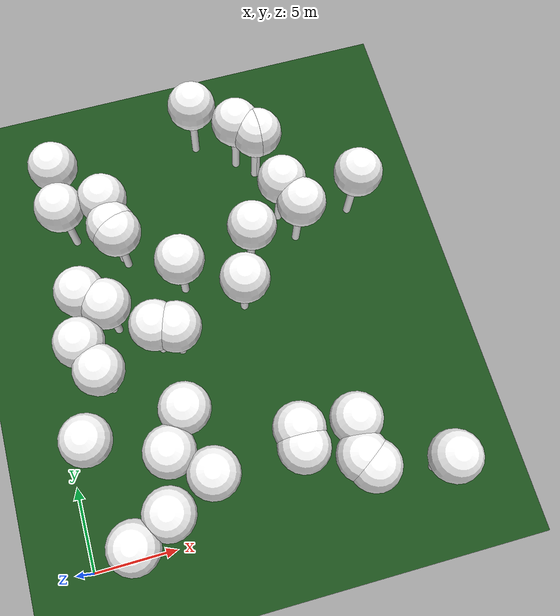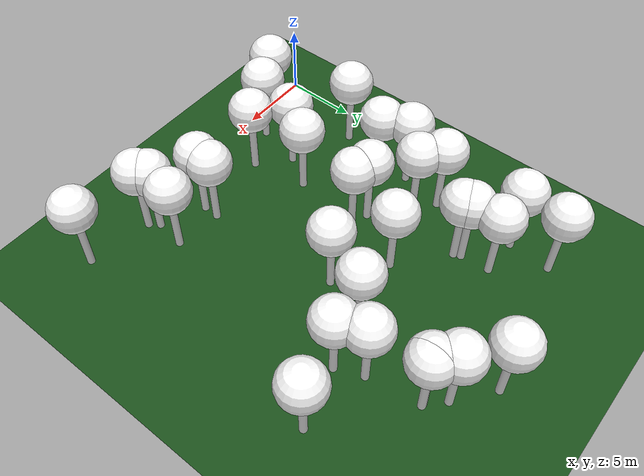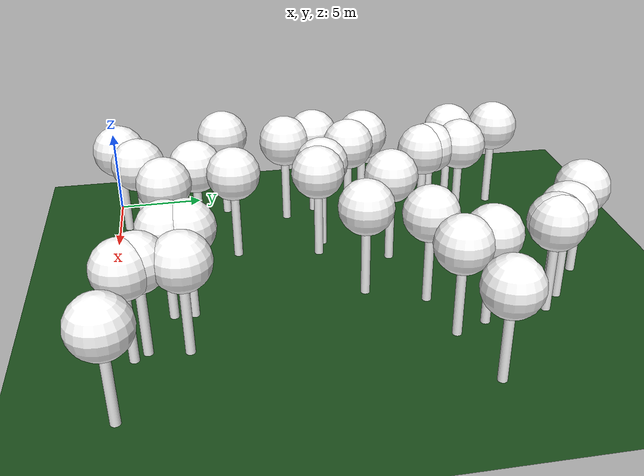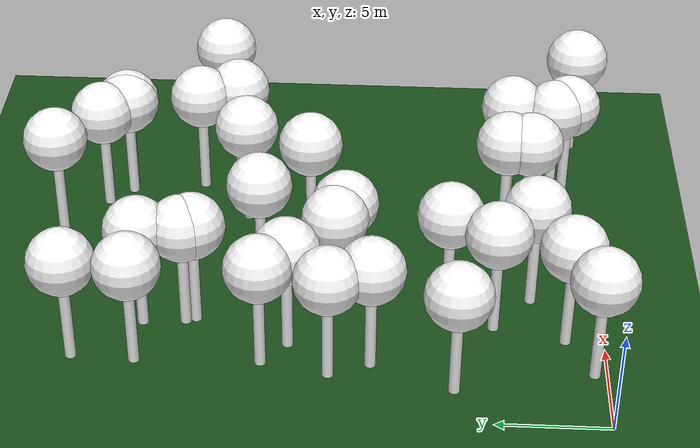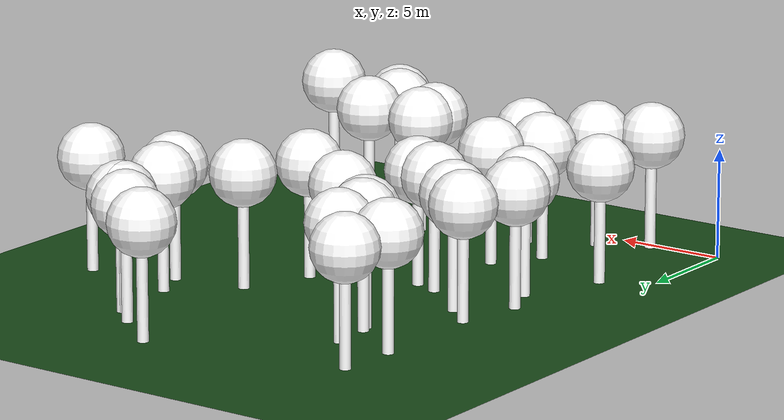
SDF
<sdf version="1.8">
 <world name="forest_world">
  <model name="tree_simple497">
   <static>1</static>
   <link name="link">
    <pose>0 0 0.1 0 -0 0</pose>
    <collision name="collision_trunk">
     <pose>0 0 2 0 -0 0</pose>
     <geometry><cylinder><radius>0.25</radius><length>4</length></cylinder></geometry>
    </collision>
    <collision name="collision_treetop">
     <pose>0 0 5.2 0 -0 0</pose>
     <geometry><sphere><radius>1.5</radius></sphere></geometry>
    </collision>
    <visual name="trunk">
     <pose>0 0 2 0 -0 0</pose>
     <geometry><cylinder><radius>0.25</radius><length>4</length></cylinder></geometry>
     <material>
      <ambient>0.5 0.5 0.5 1</ambient>
      <diffuse>1.0 1.0 1.0 1</diffuse>
      <specular>0.0 0.0 0.0 1</specular>
      <pbr>
       <metal>
        <albedo_map>../worlds/textures/tree_simple_trunk.jpg</albedo_map>
        <metalness>0.0</metalness>
        <roughness>0.8</roughness>
       </metal>
      </pbr>
     </material>
    </visual>
    <visual name="treetop">
     <pose>0 0 5.2 0 -0 0</pose>
     <geometry><sphere><radius>1.5</radius></sphere></geometry>
     <material>
      <ambient>0.5 0.5 0.5 1</ambient>
      <diffuse>1.0 1.0 1.0 1</diffuse>
      <specular>0.0 0.0 0.0 1</specular>
      <pbr>
       <metal>
        <albedo_map>../worlds/textures/tree_simple_treetop.jpg</albedo_map>
        <metalness>0.0</metalness>
        <roughness>0.9</roughness>
       </metal>
      </pbr>
     </material>
    </visual>
   </link>
   <pose>16.5730666381 19.0016793819 0 0 -0 0</pose>
  </model>
  <model name="tree_simple495">
   <static>1</static>
   <link name="link">
    <pose>0 0 0.1 0 -0 0</pose>
    <collision name="collision_trunk">
     <pose>0 0 2 0 -0 0</pose>
     <geometry><cylinder><radius>0.25</radius><length>4</length></cylinder></geometry>
    </collision>
    <collision name="collision_treetop">
     <pose>0 0 5.2 0 -0 0</pose>
     <geometry><sphere><radius>1.5</radius></sphere></geometry>
    </collision>
    <visual name="trunk">
     <pose>0 0 2 0 -0 0</pose>
     <geometry><cylinder><radius>0.25</radius><length>4</length></cylinder></geometry>
     <material>
      <ambient>0.5 0.5 0.5 1</ambient>
      <diffuse>1.0 1.0 1.0 1</diffuse>
      <specular>0.0 0.0 0.0 1</specular>
      <pbr>
       <metal>
        <albedo_map>../worlds/textures/tree_simple_trunk.jpg</albedo_map>
        <metalness>0.0</metalness>
        <roughness>0.8</roughness>
       </metal>
      </pbr>
     </material>
    </visual>
    <visual name="treetop">
     <pose>0 0 5.2 0 -0 0</pose>
     <geometry><sphere><radius>1.5</radius></sphere></geometry>
     <material>
      <ambient>0.5 0.5 0.5 1</ambient>
      <diffuse>1.0 1.0 1.0 1</diffuse>
      <specular>0.0 0.0 0.0 1</specular>
      <pbr>
       <metal>
        <albedo_map>../worlds/textures/tree_simple_treetop.jpg</albedo_map>
        <metalness>0.0</metalness>
        <roughness>0.9</roughness>
       </metal>
      </pbr>
     </material>
    </visual>
   </link>
   <pose>13.2663357304 3.23501246435 0 0 -0 0</pose>
  </model>
  <model name="tree_simple486">
   <static>1</static>
   <link name="link">
    <pose>0 0 0.1 0 -0 0</pose>
    <collision name="collision_trunk">
     <pose>0 0 2 0 -0 0</pose>
     <geometry><cylinder><radius>0.25</radius><length>4</length></cylinder></geometry>
    </collision>
    <collision name="collision_treetop">
     <pose>0 0 5.2 0 -0 0</pose>
     <geometry><sphere><radius>1.5</radius></sphere></geometry>
    </collision>
    <visual name="trunk">
     <pose>0 0 2 0 -0 0</pose>
     <geometry><cylinder><radius>0.25</radius><length>4</length></cylinder></geometry>
     <material>
      <ambient>0.5 0.5 0.5 1</ambient>
      <diffuse>1.0 1.0 1.0 1</diffuse>
      <specular>0.0 0.0 0.0 1</specular>
      <pbr>
       <metal>
        <albedo_map>../worlds/textures/tree_simple_trunk.jpg</albedo_map>
        <metalness>0.0</metalness>
        <roughness>0.8</roughness>
       </metal>
      </pbr>
     </material>
    </visual>
    <visual name="treetop">
     <pose>0 0 5.2 0 -0 0</pose>
     <geometry><sphere><radius>1.5</radius></sphere></geometry>
     <material>
      <ambient>0.5 0.5 0.5 1</ambient>
      <diffuse>1.0 1.0 1.0 1</diffuse>
      <specular>0.0 0.0 0.0 1</specular>
      <pbr>
       <metal>
        <albedo_map>../worlds/textures/tree_simple_treetop.jpg</albedo_map>
        <metalness>0.0</metalness>
        <roughness>0.9</roughness>
       </metal>
      </pbr>
     </material>
    </visual>
   </link>
   <pose>8.18281559396 11.6524151823 0 0 -0 0</pose>
  </model>
  <model name="tree_simple465">
   <static>1</static>
   <link name="link">
    <pose>0 0 0.1 0 -0 0</pose>
    <collision name="collision_trunk">
     <pose>0 0 2 0 -0 0</pose>
     <geometry><cylinder><radius>0.25</radius><length>4</length></cylinder></geometry>
    </collision>
    <collision name="collision_treetop">
     <pose>0 0 5.2 0 -0 0</pose>
     <geometry><sphere><radius>1.5</radius></sphere></geometry>
    </collision>
    <visual name="trunk">
     <pose>0 0 2 0 -0 0</pose>
     <geometry><cylinder><radius>0.25</radius><length>4</length></cylinder></geometry>
     <material>
      <ambient>0.5 0.5 0.5 1</ambient>
      <diffuse>1.0 1.0 1.0 1</diffuse>
      <specular>0.0 0.0 0.0 1</specular>
      <pbr>
       <metal>
        <albedo_map>../worlds/textures/tree_simple_trunk.jpg</albedo_map>
        <metalness>0.0</metalness>
        <roughness>0.8</roughness>
       </metal>
      </pbr>
     </material>
    </visual>
    <visual name="treetop">
     <pose>0 0 5.2 0 -0 0</pose>
     <geometry><sphere><radius>1.5</radius></sphere></geometry>
     <material>
      <ambient>0.5 0.5 0.5 1</ambient>
      <diffuse>1.0 1.0 1.0 1</diffuse>
      <specular>0.0 0.0 0.0 1</specular>
      <pbr>
       <metal>
        <albedo_map>../worlds/textures/tree_simple_treetop.jpg</albedo_map>
        <metalness>0.0</metalness>
        <roughness>0.9</roughness>
       </metal>
      </pbr>
     </material>
    </visual>
   </link>
   <pose>5.78708546562 20.6382949275 0 0 -0 0</pose>
  </model>
  <model name="tree_simple450">
   <static>1</static>
   <link name="link">
    <pose>0 0 0.1 0 -0 0</pose>
    <collision name="collision_trunk">
     <pose>0 0 2 0 -0 0</pose>
     <geometry><cylinder><radius>0.25</radius><length>4</length></cylinder></geometry>
    </collision>
    <collision name="collision_treetop">
     <pose>0 0 5.2 0 -0 0</pose>
     <geometry><sphere><radius>1.5</radius></sphere></geometry>
    </collision>
    <visual name="trunk">
     <pose>0 0 2 0 -0 0</pose>
     <geometry><cylinder><radius>0.25</radius><length>4</length></cylinder></geometry>
     <material>
      <ambient>0.5 0.5 0.5 1</ambient>
      <diffuse>1.0 1.0 1.0 1</diffuse>
      <specular>0.0 0.0 0.0 1</specular>
      <pbr>
       <metal>
        <albedo_map>../worlds/textures/tree_simple_trunk.jpg</albedo_map>
        <metalness>0.0</metalness>
        <roughness>0.8</roughness>
       </metal>
      </pbr>
     </material>
    </visual>
    <visual name="treetop">
     <pose>0 0 5.2 0 -0 0</pose>
     <geometry><sphere><radius>1.5</radius></sphere></geometry>
     <material>
      <ambient>0.5 0.5 0.5 1</ambient>
      <diffuse>1.0 1.0 1.0 1</diffuse>
      <specular>0.0 0.0 0.0 1</specular>
      <pbr>
       <metal>
        <albedo_map>../worlds/textures/tree_simple_treetop.jpg</albedo_map>
        <metalness>0.0</metalness>
        <roughness>0.9</roughness>
       </metal>
      </pbr>
     </material>
    </visual>
   </link>
   <pose>16.0273432372 22.5148519884 0 0 -0 0</pose>
  </model>
  <model name="tree_simple421">
   <static>1</static>
   <link name="link">
    <pose>0 0 0.1 0 -0 0</pose>
    <collision name="collision_trunk">
     <pose>0 0 2 0 -0 0</pose>
     <geometry><cylinder><radius>0.25</radius><length>4</length></cylinder></geometry>
    </collision>
    <collision name="collision_treetop">
     <pose>0 0 5.2 0 -0 0</pose>
     <geometry><sphere><radius>1.5</radius></sphere></geometry>
    </collision>
    <visual name="trunk">
     <pose>0 0 2 0 -0 0</pose>
     <geometry><cylinder><radius>0.25</radius><length>4</length></cylinder></geometry>
     <material>
      <ambient>0.5 0.5 0.5 1</ambient>
      <diffuse>1.0 1.0 1.0 1</diffuse>
      <specular>0.0 0.0 0.0 1</specular>
      <pbr>
       <metal>
        <albedo_map>../worlds/textures/tree_simple_trunk.jpg</albedo_map>
        <metalness>0.0</metalness>
        <roughness>0.8</roughness>
       </metal>
      </pbr>
     </material>
    </visual>
    <visual name="treetop">
     <pose>0 0 5.2 0 -0 0</pose>
     <geometry><sphere><radius>1.5</radius></sphere></geometry>
     <material>
      <ambient>0.5 0.5 0.5 1</ambient>
      <diffuse>1.0 1.0 1.0 1</diffuse>
      <specular>0.0 0.0 0.0 1</specular>
      <pbr>
       <metal>
        <albedo_map>../worlds/textures/tree_simple_treetop.jpg</albedo_map>
        <metalness>0.0</metalness>
        <roughness>0.9</roughness>
       </metal>
      </pbr>
     </material>
    </visual>
   </link>
   <pose>7.02492588621 12.0559728025 0 0 -0 0</pose>
  </model>
  <model name="tree_simple412">
   <static>1</static>
   <link name="link">
    <pose>0 0 0.1 0 -0 0</pose>
    <collision name="collision_trunk">
     <pose>0 0 2 0 -0 0</pose>
     <geometry><cylinder><radius>0.25</radius><length>4</length></cylinder></geometry>
    </collision>
    <collision name="collision_treetop">
     <pose>0 0 5.2 0 -0 0</pose>
     <geometry><sphere><radius>1.5</radius></sphere></geometry>
    </collision>
    <visual name="trunk">
     <pose>0 0 2 0 -0 0</pose>
     <geometry><cylinder><radius>0.25</radius><length>4</length></cylinder></geometry>
     <material>
      <ambient>0.5 0.5 0.5 1</ambient>
      <diffuse>1.0 1.0 1.0 1</diffuse>
      <specular>0.0 0.0 0.0 1</specular>
      <pbr>
       <metal>
        <albedo_map>../worlds/textures/tree_simple_trunk.jpg</albedo_map>
        <metalness>0.0</metalness>
        <roughness>0.8</roughness>
       </metal>
      </pbr>
     </material>
    </visual>
    <visual name="treetop">
     <pose>0 0 5.2 0 -0 0</pose>
     <geometry><sphere><radius>1.5</radius></sphere></geometry>
     <material>
      <ambient>0.5 0.5 0.5 1</ambient>
      <diffuse>1.0 1.0 1.0 1</diffuse>
      <specular>0.0 0.0 0.0 1</specular>
      <pbr>
       <metal>
        <albedo_map>../worlds/textures/tree_simple_treetop.jpg</albedo_map>
        <metalness>0.0</metalness>
        <roughness>0.9</roughness>
       </metal>
      </pbr>
     </material>
    </visual>
   </link>
   <pose>1.94235434688 6.68973059551 0 0 -0 0</pose>
  </model>
  <model name="tree_simple350">
   <static>1</static>
   <link name="link">
    <pose>0 0 0.1 0 -0 0</pose>
    <collision name="collision_trunk">
     <pose>0 0 2 0 -0 0</pose>
     <geometry><cylinder><radius>0.25</radius><length>4</length></cylinder></geometry>
    </collision>
    <collision name="collision_treetop">
     <pose>0 0 5.2 0 -0 0</pose>
     <geometry><sphere><radius>1.5</radius></sphere></geometry>
    </collision>
    <visual name="trunk">
     <pose>0 0 2 0 -0 0</pose>
     <geometry><cylinder><radius>0.25</radius><length>4</length></cylinder></geometry>
     <material>
      <ambient>0.5 0.5 0.5 1</ambient>
      <diffuse>1.0 1.0 1.0 1</diffuse>
      <specular>0.0 0.0 0.0 1</specular>
      <pbr>
       <metal>
        <albedo_map>../worlds/textures/tree_simple_trunk.jpg</albedo_map>
        <metalness>0.0</metalness>
        <roughness>0.8</roughness>
       </metal>
      </pbr>
     </material>
    </visual>
    <visual name="treetop">
     <pose>0 0 5.2 0 -0 0</pose>
     <geometry><sphere><radius>1.5</radius></sphere></geometry>
     <material>
      <ambient>0.5 0.5 0.5 1</ambient>
      <diffuse>1.0 1.0 1.0 1</diffuse>
      <specular>0.0 0.0 0.0 1</specular>
      <pbr>
       <metal>
        <albedo_map>../worlds/textures/tree_simple_treetop.jpg</albedo_map>
        <metalness>0.0</metalness>
        <roughness>0.9</roughness>
       </metal>
      </pbr>
     </material>
    </visual>
   </link>
   <pose>5.40258361507 1.7380066323 0 0 -0 0</pose>
  </model>
  <model name="tree_simple346">
   <static>1</static>
   <link name="link">
    <pose>0 0 0.1 0 -0 0</pose>
    <collision name="collision_trunk">
     <pose>0 0 2 0 -0 0</pose>
     <geometry><cylinder><radius>0.25</radius><length>4</length></cylinder></geometry>
    </collision>
    <collision name="collision_treetop">
     <pose>0 0 5.2 0 -0 0</pose>
     <geometry><sphere><radius>1.5</radius></sphere></geometry>
    </collision>
    <visual name="trunk">
     <pose>0 0 2 0 -0 0</pose>
     <geometry><cylinder><radius>0.25</radius><length>4</length></cylinder></geometry>
     <material>
      <ambient>0.5 0.5 0.5 1</ambient>
      <diffuse>1.0 1.0 1.0 1</diffuse>
      <specular>0.0 0.0 0.0 1</specular>
      <pbr>
       <metal>
        <albedo_map>../worlds/textures/tree_simple_trunk.jpg</albedo_map>
        <metalness>0.0</metalness>
        <roughness>0.8</roughness>
       </metal>
      </pbr>
     </material>
    </visual>
    <visual name="treetop">
     <pose>0 0 5.2 0 -0 0</pose>
     <geometry><sphere><radius>1.5</radius></sphere></geometry>
     <material>
      <ambient>0.5 0.5 0.5 1</ambient>
      <diffuse>1.0 1.0 1.0 1</diffuse>
      <specular>0.0 0.0 0.0 1</specular>
      <pbr>
       <metal>
        <albedo_map>../worlds/textures/tree_simple_treetop.jpg</albedo_map>
        <metalness>0.0</metalness>
        <roughness>0.9</roughness>
       </metal>
      </pbr>
     </material>
    </visual>
   </link>
   <pose>6.18558583868 4.91340003373 0 0 -0 0</pose>
  </model>
  <model name="tree_simple328">
   <static>1</static>
   <link name="link">
    <pose>0 0 0.1 0 -0 0</pose>
    <collision name="collision_trunk">
     <pose>0 0 2 0 -0 0</pose>
     <geometry><cylinder><radius>0.25</radius><length>4</length></cylinder></geometry>
    </collision>
    <collision name="collision_treetop">
     <pose>0 0 5.2 0 -0 0</pose>
     <geometry><sphere><radius>1.5</radius></sphere></geometry>
    </collision>
    <visual name="trunk">
     <pose>0 0 2 0 -0 0</pose>
     <geometry><cylinder><radius>0.25</radius><length>4</length></cylinder></geometry>
     <material>
      <ambient>0.5 0.5 0.5 1</ambient>
      <diffuse>1.0 1.0 1.0 1</diffuse>
      <specular>0.0 0.0 0.0 1</specular>
      <pbr>
       <metal>
        <albedo_map>../worlds/textures/tree_simple_trunk.jpg</albedo_map>
        <metalness>0.0</metalness>
        <roughness>0.8</roughness>
       </metal>
      </pbr>
     </material>
    </visual>
    <visual name="treetop">
     <pose>0 0 5.2 0 -0 0</pose>
     <geometry><sphere><radius>1.5</radius></sphere></geometry>
     <material>
      <ambient>0.5 0.5 0.5 1</ambient>
      <diffuse>1.0 1.0 1.0 1</diffuse>
      <specular>0.0 0.0 0.0 1</specular>
      <pbr>
       <metal>
        <albedo_map>../worlds/textures/tree_simple_treetop.jpg</albedo_map>
        <metalness>0.0</metalness>
        <roughness>0.9</roughness>
       </metal>
      </pbr>
     </material>
    </visual>
   </link>
   <pose>3.34573808519 23.5188113382 0 0 -0 0</pose>
  </model>
  <model name="tree_simple324">
   <static>1</static>
   <link name="link">
    <pose>0 0 0.1 0 -0 0</pose>
    <collision name="collision_trunk">
     <pose>0 0 2 0 -0 0</pose>
     <geometry><cylinder><radius>0.25</radius><length>4</length></cylinder></geometry>
    </collision>
    <collision name="collision_treetop">
     <pose>0 0 5.2 0 -0 0</pose>
     <geometry><sphere><radius>1.5</radius></sphere></geometry>
    </collision>
    <visual name="trunk">
     <pose>0 0 2 0 -0 0</pose>
     <geometry><cylinder><radius>0.25</radius><length>4</length></cylinder></geometry>
     <material>
      <ambient>0.5 0.5 0.5 1</ambient>
      <diffuse>1.0 1.0 1.0 1</diffuse>
      <specular>0.0 0.0 0.0 1</specular>
      <pbr>
       <metal>
        <albedo_map>../worlds/textures/tree_simple_trunk.jpg</albedo_map>
        <metalness>0.0</metalness>
        <roughness>0.8</roughness>
       </metal>
      </pbr>
     </material>
    </visual>
    <visual name="treetop">
     <pose>0 0 5.2 0 -0 0</pose>
     <geometry><sphere><radius>1.5</radius></sphere></geometry>
     <material>
      <ambient>0.5 0.5 0.5 1</ambient>
      <diffuse>1.0 1.0 1.0 1</diffuse>
      <specular>0.0 0.0 0.0 1</specular>
      <pbr>
       <metal>
        <albedo_map>../worlds/textures/tree_simple_treetop.jpg</albedo_map>
        <metalness>0.0</metalness>
        <roughness>0.9</roughness>
       </metal>
      </pbr>
     </material>
    </visual>
   </link>
   <pose>2.67974288493 12.1656578915 0 0 -0 0</pose>
  </model>
  <model name="tree_simple315">
   <static>1</static>
   <link name="link">
    <pose>0 0 0.1 0 -0 0</pose>
    <collision name="collision_trunk">
     <pose>0 0 2 0 -0 0</pose>
     <geometry><cylinder><radius>0.25</radius><length>4</length></cylinder></geometry>
    </collision>
    <collision name="collision_treetop">
     <pose>0 0 5.2 0 -0 0</pose>
     <geometry><sphere><radius>1.5</radius></sphere></geometry>
    </collision>
    <visual name="trunk">
     <pose>0 0 2 0 -0 0</pose>
     <geometry><cylinder><radius>0.25</radius><length>4</length></cylinder></geometry>
     <material>
      <ambient>0.5 0.5 0.5 1</ambient>
      <diffuse>1.0 1.0 1.0 1</diffuse>
      <specular>0.0 0.0 0.0 1</specular>
      <pbr>
       <metal>
        <albedo_map>../worlds/textures/tree_simple_trunk.jpg</albedo_map>
        <metalness>0.0</metalness>
        <roughness>0.8</roughness>
       </metal>
      </pbr>
     </material>
    </visual>
    <visual name="treetop">
     <pose>0 0 5.2 0 -0 0</pose>
     <geometry><sphere><radius>1.5</radius></sphere></geometry>
     <material>
      <ambient>0.5 0.5 0.5 1</ambient>
      <diffuse>1.0 1.0 1.0 1</diffuse>
      <specular>0.0 0.0 0.0 1</specular>
      <pbr>
       <metal>
        <albedo_map>../worlds/textures/tree_simple_treetop.jpg</albedo_map>
        <metalness>0.0</metalness>
        <roughness>0.9</roughness>
       </metal>
      </pbr>
     </material>
    </visual>
   </link>
   <pose>20.9855205965 0.626463942169 0 0 -0 0</pose>
  </model>
  <model name="tree_simple308">
   <static>1</static>
   <link name="link">
    <pose>0 0 0.1 0 -0 0</pose>
    <collision name="collision_trunk">
     <pose>0 0 2 0 -0 0</pose>
     <geometry><cylinder><radius>0.25</radius><length>4</length></cylinder></geometry>
    </collision>
    <collision name="collision_treetop">
     <pose>0 0 5.2 0 -0 0</pose>
     <geometry><sphere><radius>1.5</radius></sphere></geometry>
    </collision>
    <visual name="trunk">
     <pose>0 0 2 0 -0 0</pose>
     <geometry><cylinder><radius>0.25</radius><length>4</length></cylinder></geometry>
     <material>
      <ambient>0.5 0.5 0.5 1</ambient>
      <diffuse>1.0 1.0 1.0 1</diffuse>
      <specular>0.0 0.0 0.0 1</specular>
      <pbr>
       <metal>
        <albedo_map>../worlds/textures/tree_simple_trunk.jpg</albedo_map>
        <metalness>0.0</metalness>
        <roughness>0.8</roughness>
       </metal>
      </pbr>
     </material>
    </visual>
    <visual name="treetop">
     <pose>0 0 5.2 0 -0 0</pose>
     <geometry><sphere><radius>1.5</radius></sphere></geometry>
     <material>
      <ambient>0.5 0.5 0.5 1</ambient>
      <diffuse>1.0 1.0 1.0 1</diffuse>
      <specular>0.0 0.0 0.0 1</specular>
      <pbr>
       <metal>
        <albedo_map>../worlds/textures/tree_simple_treetop.jpg</albedo_map>
        <metalness>0.0</metalness>
        <roughness>0.9</roughness>
       </metal>
      </pbr>
     </material>
    </visual>
   </link>
   <pose>3.23733276298 0.582978933188 0 0 -0 0</pose>
  </model>
  <model name="tree_simple304">
   <static>1</static>
   <link name="link">
    <pose>0 0 0.1 0 -0 0</pose>
    <collision name="collision_trunk">
     <pose>0 0 2 0 -0 0</pose>
     <geometry><cylinder><radius>0.25</radius><length>4</length></cylinder></geometry>
    </collision>
    <collision name="collision_treetop">
     <pose>0 0 5.2 0 -0 0</pose>
     <geometry><sphere><radius>1.5</radius></sphere></geometry>
    </collision>
    <visual name="trunk">
     <pose>0 0 2 0 -0 0</pose>
     <geometry><cylinder><radius>0.25</radius><length>4</length></cylinder></geometry>
     <material>
      <ambient>0.5 0.5 0.5 1</ambient>
      <diffuse>1.0 1.0 1.0 1</diffuse>
      <specular>0.0 0.0 0.0 1</specular>
      <pbr>
       <metal>
        <albedo_map>../worlds/textures/tree_simple_trunk.jpg</albedo_map>
        <metalness>0.0</metalness>
        <roughness>0.8</roughness>
       </metal>
      </pbr>
     </material>
    </visual>
    <visual name="treetop">
     <pose>0 0 5.2 0 -0 0</pose>
     <geometry><sphere><radius>1.5</radius></sphere></geometry>
     <material>
      <ambient>0.5 0.5 0.5 1</ambient>
      <diffuse>1.0 1.0 1.0 1</diffuse>
      <specular>0.0 0.0 0.0 1</specular>
      <pbr>
       <metal>
        <albedo_map>../worlds/textures/tree_simple_treetop.jpg</albedo_map>
        <metalness>0.0</metalness>
        <roughness>0.9</roughness>
       </metal>
      </pbr>
     </material>
    </visual>
   </link>
   <pose>12.7492321523 13.4736505169 0 0 -0 0</pose>
  </model>
  <model name="tree_simple269">
   <static>1</static>
   <link name="link">
    <pose>0 0 0.1 0 -0 0</pose>
    <collision name="collision_trunk">
     <pose>0 0 2 0 -0 0</pose>
     <geometry><cylinder><radius>0.25</radius><length>4</length></cylinder></geometry>
    </collision>
    <collision name="collision_treetop">
     <pose>0 0 5.2 0 -0 0</pose>
     <geometry><sphere><radius>1.5</radius></sphere></geometry>
    </collision>
    <visual name="trunk">
     <pose>0 0 2 0 -0 0</pose>
     <geometry><cylinder><radius>0.25</radius><length>4</length></cylinder></geometry>
     <material>
      <ambient>0.5 0.5 0.5 1</ambient>
      <diffuse>1.0 1.0 1.0 1</diffuse>
      <specular>0.0 0.0 0.0 1</specular>
      <pbr>
       <metal>
        <albedo_map>../worlds/textures/tree_simple_trunk.jpg</albedo_map>
        <metalness>0.0</metalness>
        <roughness>0.8</roughness>
       </metal>
      </pbr>
     </material>
    </visual>
    <visual name="treetop">
     <pose>0 0 5.2 0 -0 0</pose>
     <geometry><sphere><radius>1.5</radius></sphere></geometry>
     <material>
      <ambient>0.5 0.5 0.5 1</ambient>
      <diffuse>1.0 1.0 1.0 1</diffuse>
      <specular>0.0 0.0 0.0 1</specular>
      <pbr>
       <metal>
        <albedo_map>../worlds/textures/tree_simple_treetop.jpg</albedo_map>
        <metalness>0.0</metalness>
        <roughness>0.9</roughness>
       </metal>
      </pbr>
     </material>
    </visual>
   </link>
   <pose>3.4316618278 10.3418603378 0 0 -0 0</pose>
  </model>
  <model name="tree_simple246">
   <static>1</static>
   <link name="link">
    <pose>0 0 0.1 0 -0 0</pose>
    <collision name="collision_trunk">
     <pose>0 0 2 0 -0 0</pose>
     <geometry><cylinder><radius>0.25</radius><length>4</length></cylinder></geometry>
    </collision>
    <collision name="collision_treetop">
     <pose>0 0 5.2 0 -0 0</pose>
     <geometry><sphere><radius>1.5</radius></sphere></geometry>
    </collision>
    <visual name="trunk">
     <pose>0 0 2 0 -0 0</pose>
     <geometry><cylinder><radius>0.25</radius><length>4</length></cylinder></geometry>
     <material>
      <ambient>0.5 0.5 0.5 1</ambient>
      <diffuse>1.0 1.0 1.0 1</diffuse>
      <specular>0.0 0.0 0.0 1</specular>
      <pbr>
       <metal>
        <albedo_map>../worlds/textures/tree_simple_trunk.jpg</albedo_map>
        <metalness>0.0</metalness>
        <roughness>0.8</roughness>
       </metal>
      </pbr>
     </material>
    </visual>
    <visual name="treetop">
     <pose>0 0 5.2 0 -0 0</pose>
     <geometry><sphere><radius>1.5</radius></sphere></geometry>
     <material>
      <ambient>0.5 0.5 0.5 1</ambient>
      <diffuse>1.0 1.0 1.0 1</diffuse>
      <specular>0.0 0.0 0.0 1</specular>
      <pbr>
       <metal>
        <albedo_map>../worlds/textures/tree_simple_treetop.jpg</albedo_map>
        <metalness>0.0</metalness>
        <roughness>0.9</roughness>
       </metal>
      </pbr>
     </material>
    </visual>
   </link>
   <pose>4.59531277399 14.0377896265 0 0 -0 0</pose>
  </model>
  <model name="tree_simple214">
   <static>1</static>
   <link name="link">
    <pose>0 0 0.1 0 -0 0</pose>
    <collision name="collision_trunk">
     <pose>0 0 2 0 -0 0</pose>
     <geometry><cylinder><radius>0.25</radius><length>4</length></cylinder></geometry>
    </collision>
    <collision name="collision_treetop">
     <pose>0 0 5.2 0 -0 0</pose>
     <geometry><sphere><radius>1.5</radius></sphere></geometry>
    </collision>
    <visual name="trunk">
     <pose>0 0 2 0 -0 0</pose>
     <geometry><cylinder><radius>0.25</radius><length>4</length></cylinder></geometry>
     <material>
      <ambient>0.5 0.5 0.5 1</ambient>
      <diffuse>1.0 1.0 1.0 1</diffuse>
      <specular>0.0 0.0 0.0 1</specular>
      <pbr>
       <metal>
        <albedo_map>../worlds/textures/tree_simple_trunk.jpg</albedo_map>
        <metalness>0.0</metalness>
        <roughness>0.8</roughness>
       </metal>
      </pbr>
     </material>
    </visual>
    <visual name="treetop">
     <pose>0 0 5.2 0 -0 0</pose>
     <geometry><sphere><radius>1.5</radius></sphere></geometry>
     <material>
      <ambient>0.5 0.5 0.5 1</ambient>
      <diffuse>1.0 1.0 1.0 1</diffuse>
      <specular>0.0 0.0 0.0 1</specular>
      <pbr>
       <metal>
        <albedo_map>../worlds/textures/tree_simple_treetop.jpg</albedo_map>
        <metalness>0.0</metalness>
        <roughness>0.9</roughness>
       </metal>
      </pbr>
     </material>
    </visual>
   </link>
   <pose>16.4618787814 3.98227082292 0 0 -0 0</pose>
  </model>
  <model name="tree_simple181">
   <static>1</static>
   <link name="link">
    <pose>0 0 0.1 0 -0 0</pose>
    <collision name="collision_trunk">
     <pose>0 0 2 0 -0 0</pose>
     <geometry><cylinder><radius>0.25</radius><length>4</length></cylinder></geometry>
    </collision>
    <collision name="collision_treetop">
     <pose>0 0 5.2 0 -0 0</pose>
     <geometry><sphere><radius>1.5</radius></sphere></geometry>
    </collision>
    <visual name="trunk">
     <pose>0 0 2 0 -0 0</pose>
     <geometry><cylinder><radius>0.25</radius><length>4</length></cylinder></geometry>
     <material>
      <ambient>0.5 0.5 0.5 1</ambient>
      <diffuse>1.0 1.0 1.0 1</diffuse>
      <specular>0.0 0.0 0.0 1</specular>
      <pbr>
       <metal>
        <albedo_map>../worlds/textures/tree_simple_trunk.jpg</albedo_map>
        <metalness>0.0</metalness>
        <roughness>0.8</roughness>
       </metal>
      </pbr>
     </material>
    </visual>
    <visual name="treetop">
     <pose>0 0 5.2 0 -0 0</pose>
     <geometry><sphere><radius>1.5</radius></sphere></geometry>
     <material>
      <ambient>0.5 0.5 0.5 1</ambient>
      <diffuse>1.0 1.0 1.0 1</diffuse>
      <specular>0.0 0.0 0.0 1</specular>
      <pbr>
       <metal>
        <albedo_map>../worlds/textures/tree_simple_treetop.jpg</albedo_map>
        <metalness>0.0</metalness>
        <roughness>0.9</roughness>
       </metal>
      </pbr>
     </material>
    </visual>
   </link>
   <pose>14.8848643659 23.5674852772 0 0 -0 0</pose>
  </model>
  <model name="tree_simple177">
   <static>1</static>
   <link name="link">
    <pose>0 0 0.1 0 -0 0</pose>
    <collision name="collision_trunk">
     <pose>0 0 2 0 -0 0</pose>
     <geometry><cylinder><radius>0.25</radius><length>4</length></cylinder></geometry>
    </collision>
    <collision name="collision_treetop">
     <pose>0 0 5.2 0 -0 0</pose>
     <geometry><sphere><radius>1.5</radius></sphere></geometry>
    </collision>
    <visual name="trunk">
     <pose>0 0 2 0 -0 0</pose>
     <geometry><cylinder><radius>0.25</radius><length>4</length></cylinder></geometry>
     <material>
      <ambient>0.5 0.5 0.5 1</ambient>
      <diffuse>1.0 1.0 1.0 1</diffuse>
      <specular>0.0 0.0 0.0 1</specular>
      <pbr>
       <metal>
        <albedo_map>../worlds/textures/tree_simple_trunk.jpg</albedo_map>
        <metalness>0.0</metalness>
        <roughness>0.8</roughness>
       </metal>
      </pbr>
     </material>
    </visual>
    <visual name="treetop">
     <pose>0 0 5.2 0 -0 0</pose>
     <geometry><sphere><radius>1.5</radius></sphere></geometry>
     <material>
      <ambient>0.5 0.5 0.5 1</ambient>
      <diffuse>1.0 1.0 1.0 1</diffuse>
      <specular>0.0 0.0 0.0 1</specular>
      <pbr>
       <metal>
        <albedo_map>../worlds/textures/tree_simple_treetop.jpg</albedo_map>
        <metalness>0.0</metalness>
        <roughness>0.9</roughness>
       </metal>
      </pbr>
     </material>
    </visual>
   </link>
   <pose>5.95472873547 18.7195439191 0 0 -0 0</pose>
  </model>
  <model name="tree_simple160">
   <static>1</static>
   <link name="link">
    <pose>0 0 0.1 0 -0 0</pose>
    <collision name="collision_trunk">
     <pose>0 0 2 0 -0 0</pose>
     <geometry><cylinder><radius>0.25</radius><length>4</length></cylinder></geometry>
    </collision>
    <collision name="collision_treetop">
     <pose>0 0 5.2 0 -0 0</pose>
     <geometry><sphere><radius>1.5</radius></sphere></geometry>
    </collision>
    <visual name="trunk">
     <pose>0 0 2 0 -0 0</pose>
     <geometry><cylinder><radius>0.25</radius><length>4</length></cylinder></geometry>
     <material>
      <ambient>0.5 0.5 0.5 1</ambient>
      <diffuse>1.0 1.0 1.0 1</diffuse>
      <specular>0.0 0.0 0.0 1</specular>
      <pbr>
       <metal>
        <albedo_map>../worlds/textures/tree_simple_trunk.jpg</albedo_map>
        <metalness>0.0</metalness>
        <roughness>0.8</roughness>
       </metal>
      </pbr>
     </material>
    </visual>
    <visual name="treetop">
     <pose>0 0 5.2 0 -0 0</pose>
     <geometry><sphere><radius>1.5</radius></sphere></geometry>
     <material>
      <ambient>0.5 0.5 0.5 1</ambient>
      <diffuse>1.0 1.0 1.0 1</diffuse>
      <specular>0.0 0.0 0.0 1</specular>
      <pbr>
       <metal>
        <albedo_map>../worlds/textures/tree_simple_treetop.jpg</albedo_map>
        <metalness>0.0</metalness>
        <roughness>0.9</roughness>
       </metal>
      </pbr>
     </material>
    </visual>
   </link>
   <pose>3.31258380175 15.1525774981 0 0 -0 0</pose>
  </model>
  <model name="tree_simple145">
   <static>1</static>
   <link name="link">
    <pose>0 0 0.1 0 -0 0</pose>
    <collision name="collision_trunk">
     <pose>0 0 2 0 -0 0</pose>
     <geometry><cylinder><radius>0.25</radius><length>4</length></cylinder></geometry>
    </collision>
    <collision name="collision_treetop">
     <pose>0 0 5.2 0 -0 0</pose>
     <geometry><sphere><radius>1.5</radius></sphere></geometry>
    </collision>
    <visual name="trunk">
     <pose>0 0 2 0 -0 0</pose>
     <geometry><cylinder><radius>0.25</radius><length>4</length></cylinder></geometry>
     <material>
      <ambient>0.5 0.5 0.5 1</ambient>
      <diffuse>1.0 1.0 1.0 1</diffuse>
      <specular>0.0 0.0 0.0 1</specular>
      <pbr>
       <metal>
        <albedo_map>../worlds/textures/tree_simple_trunk.jpg</albedo_map>
        <metalness>0.0</metalness>
        <roughness>0.8</roughness>
       </metal>
      </pbr>
     </material>
    </visual>
    <visual name="treetop">
     <pose>0 0 5.2 0 -0 0</pose>
     <geometry><sphere><radius>1.5</radius></sphere></geometry>
     <material>
      <ambient>0.5 0.5 0.5 1</ambient>
      <diffuse>1.0 1.0 1.0 1</diffuse>
      <specular>0.0 0.0 0.0 1</specular>
      <pbr>
       <metal>
        <albedo_map>../worlds/textures/tree_simple_treetop.jpg</albedo_map>
        <metalness>0.0</metalness>
        <roughness>0.9</roughness>
       </metal>
      </pbr>
     </material>
    </visual>
   </link>
   <pose>7.53257093085 6.9864658102 0 0 -0 0</pose>
  </model>
  <model name="tree_simple98">
   <static>1</static>
   <link name="link">
    <pose>0 0 0.1 0 -0 0</pose>
    <collision name="collision_trunk">
     <pose>0 0 2 0 -0 0</pose>
     <geometry><cylinder><radius>0.25</radius><length>4</length></cylinder></geometry>
    </collision>
    <collision name="collision_treetop">
     <pose>0 0 5.2 0 -0 0</pose>
     <geometry><sphere><radius>1.5</radius></sphere></geometry>
    </collision>
    <visual name="trunk">
     <pose>0 0 2 0 -0 0</pose>
     <geometry><cylinder><radius>0.25</radius><length>4</length></cylinder></geometry>
     <material>
      <ambient>0.5 0.5 0.5 1</ambient>
      <diffuse>1.0 1.0 1.0 1</diffuse>
      <specular>0.0 0.0 0.0 1</specular>
      <pbr>
       <metal>
        <albedo_map>../worlds/textures/tree_simple_trunk.jpg</albedo_map>
        <metalness>0.0</metalness>
        <roughness>0.8</roughness>
       </metal>
      </pbr>
     </material>
    </visual>
    <visual name="treetop">
     <pose>0 0 5.2 0 -0 0</pose>
     <geometry><sphere><radius>1.5</radius></sphere></geometry>
     <material>
      <ambient>0.5 0.5 0.5 1</ambient>
      <diffuse>1.0 1.0 1.0 1</diffuse>
      <specular>0.0 0.0 0.0 1</specular>
      <pbr>
       <metal>
        <albedo_map>../worlds/textures/tree_simple_treetop.jpg</albedo_map>
        <metalness>0.0</metalness>
        <roughness>0.9</roughness>
       </metal>
      </pbr>
     </material>
    </visual>
   </link>
   <pose>14.024693035 16.5700471203 0 0 -0 0</pose>
  </model>
  <model name="tree_simple95">
   <static>1</static>
   <link name="link">
    <pose>0 0 0.1 0 -0 0</pose>
    <collision name="collision_trunk">
     <pose>0 0 2 0 -0 0</pose>
     <geometry><cylinder><radius>0.25</radius><length>4</length></cylinder></geometry>
    </collision>
    <collision name="collision_treetop">
     <pose>0 0 5.2 0 -0 0</pose>
     <geometry><sphere><radius>1.5</radius></sphere></geometry>
    </collision>
    <visual name="trunk">
     <pose>0 0 2 0 -0 0</pose>
     <geometry><cylinder><radius>0.25</radius><length>4</length></cylinder></geometry>
     <material>
      <ambient>0.5 0.5 0.5 1</ambient>
      <diffuse>1.0 1.0 1.0 1</diffuse>
      <specular>0.0 0.0 0.0 1</specular>
      <pbr>
       <metal>
        <albedo_map>../worlds/textures/tree_simple_trunk.jpg</albedo_map>
        <metalness>0.0</metalness>
        <roughness>0.8</roughness>
       </metal>
      </pbr>
     </material>
    </visual>
    <visual name="treetop">
     <pose>0 0 5.2 0 -0 0</pose>
     <geometry><sphere><radius>1.5</radius></sphere></geometry>
     <material>
      <ambient>0.5 0.5 0.5 1</ambient>
      <diffuse>1.0 1.0 1.0 1</diffuse>
      <specular>0.0 0.0 0.0 1</specular>
      <pbr>
       <metal>
        <albedo_map>../worlds/textures/tree_simple_treetop.jpg</albedo_map>
        <metalness>0.0</metalness>
        <roughness>0.9</roughness>
       </metal>
      </pbr>
     </material>
    </visual>
   </link>
   <pose>3.20302207312 20.7020436907 0 0 -0 0</pose>
  </model>
  <model name="tree_simple94">
   <static>1</static>
   <link name="link">
    <pose>0 0 0.1 0 -0 0</pose>
    <collision name="collision_trunk">
     <pose>0 0 2 0 -0 0</pose>
     <geometry><cylinder><radius>0.25</radius><length>4</length></cylinder></geometry>
    </collision>
    <collision name="collision_treetop">
     <pose>0 0 5.2 0 -0 0</pose>
     <geometry><sphere><radius>1.5</radius></sphere></geometry>
    </collision>
    <visual name="trunk">
     <pose>0 0 2 0 -0 0</pose>
     <geometry><cylinder><radius>0.25</radius><length>4</length></cylinder></geometry>
     <material>
      <ambient>0.5 0.5 0.5 1</ambient>
      <diffuse>1.0 1.0 1.0 1</diffuse>
      <specular>0.0 0.0 0.0 1</specular>
      <pbr>
       <metal>
        <albedo_map>../worlds/textures/tree_simple_trunk.jpg</albedo_map>
        <metalness>0.0</metalness>
        <roughness>0.8</roughness>
       </metal>
      </pbr>
     </material>
    </visual>
    <visual name="treetop">
     <pose>0 0 5.2 0 -0 0</pose>
     <geometry><sphere><radius>1.5</radius></sphere></geometry>
     <material>
      <ambient>0.5 0.5 0.5 1</ambient>
      <diffuse>1.0 1.0 1.0 1</diffuse>
      <specular>0.0 0.0 0.0 1</specular>
      <pbr>
       <metal>
        <albedo_map>../worlds/textures/tree_simple_treetop.jpg</albedo_map>
        <metalness>0.0</metalness>
        <roughness>0.9</roughness>
       </metal>
      </pbr>
     </material>
    </visual>
   </link>
   <pose>6.14879298853 18.2743585392 0 0 -0 0</pose>
  </model>
  <model name="tree_simple85">
   <static>1</static>
   <link name="link">
    <pose>0 0 0.1 0 -0 0</pose>
    <collision name="collision_trunk">
     <pose>0 0 2 0 -0 0</pose>
     <geometry><cylinder><radius>0.25</radius><length>4</length></cylinder></geometry>
    </collision>
    <collision name="collision_treetop">
     <pose>0 0 5.2 0 -0 0</pose>
     <geometry><sphere><radius>1.5</radius></sphere></geometry>
    </collision>
    <visual name="trunk">
     <pose>0 0 2 0 -0 0</pose>
     <geometry><cylinder><radius>0.25</radius><length>4</length></cylinder></geometry>
     <material>
      <ambient>0.5 0.5 0.5 1</ambient>
      <diffuse>1.0 1.0 1.0 1</diffuse>
      <specular>0.0 0.0 0.0 1</specular>
      <pbr>
       <metal>
        <albedo_map>../worlds/textures/tree_simple_trunk.jpg</albedo_map>
        <metalness>0.0</metalness>
        <roughness>0.8</roughness>
       </metal>
      </pbr>
     </material>
    </visual>
    <visual name="treetop">
     <pose>0 0 5.2 0 -0 0</pose>
     <geometry><sphere><radius>1.5</radius></sphere></geometry>
     <material>
      <ambient>0.5 0.5 0.5 1</ambient>
      <diffuse>1.0 1.0 1.0 1</diffuse>
      <specular>0.0 0.0 0.0 1</specular>
      <pbr>
       <metal>
        <albedo_map>../worlds/textures/tree_simple_treetop.jpg</albedo_map>
        <metalness>0.0</metalness>
        <roughness>0.9</roughness>
       </metal>
      </pbr>
     </material>
    </visual>
   </link>
   <pose>9.34911088968 15.5834050792 0 0 -0 0</pose>
  </model>
  <model name="tree_simple84">
   <static>1</static>
   <link name="link">
    <pose>0 0 0.1 0 -0 0</pose>
    <collision name="collision_trunk">
     <pose>0 0 2 0 -0 0</pose>
     <geometry><cylinder><radius>0.25</radius><length>4</length></cylinder></geometry>
    </collision>
    <collision name="collision_treetop">
     <pose>0 0 5.2 0 -0 0</pose>
     <geometry><sphere><radius>1.5</radius></sphere></geometry>
    </collision>
    <visual name="trunk">
     <pose>0 0 2 0 -0 0</pose>
     <geometry><cylinder><radius>0.25</radius><length>4</length></cylinder></geometry>
     <material>
      <ambient>0.5 0.5 0.5 1</ambient>
      <diffuse>1.0 1.0 1.0 1</diffuse>
      <specular>0.0 0.0 0.0 1</specular>
      <pbr>
       <metal>
        <albedo_map>../worlds/textures/tree_simple_trunk.jpg</albedo_map>
        <metalness>0.0</metalness>
        <roughness>0.8</roughness>
       </metal>
      </pbr>
     </material>
    </visual>
    <visual name="treetop">
     <pose>0 0 5.2 0 -0 0</pose>
     <geometry><sphere><radius>1.5</radius></sphere></geometry>
     <material>
      <ambient>0.5 0.5 0.5 1</ambient>
      <diffuse>1.0 1.0 1.0 1</diffuse>
      <specular>0.0 0.0 0.0 1</specular>
      <pbr>
       <metal>
        <albedo_map>../worlds/textures/tree_simple_treetop.jpg</albedo_map>
        <metalness>0.0</metalness>
        <roughness>0.9</roughness>
       </metal>
      </pbr>
     </material>
    </visual>
   </link>
   <pose>17.2995655595 17.2600237407 0 0 -0 0</pose>
  </model>
  <model name="tree_simple81">
   <static>1</static>
   <link name="link">
    <pose>0 0 0.1 0 -0 0</pose>
    <collision name="collision_trunk">
     <pose>0 0 2 0 -0 0</pose>
     <geometry><cylinder><radius>0.25</radius><length>4</length></cylinder></geometry>
    </collision>
    <collision name="collision_treetop">
     <pose>0 0 5.2 0 -0 0</pose>
     <geometry><sphere><radius>1.5</radius></sphere></geometry>
    </collision>
    <visual name="trunk">
     <pose>0 0 2 0 -0 0</pose>
     <geometry><cylinder><radius>0.25</radius><length>4</length></cylinder></geometry>
     <material>
      <ambient>0.5 0.5 0.5 1</ambient>
      <diffuse>1.0 1.0 1.0 1</diffuse>
      <specular>0.0 0.0 0.0 1</specular>
      <pbr>
       <metal>
        <albedo_map>../worlds/textures/tree_simple_trunk.jpg</albedo_map>
        <metalness>0.0</metalness>
        <roughness>0.8</roughness>
       </metal>
      </pbr>
     </material>
    </visual>
    <visual name="treetop">
     <pose>0 0 5.2 0 -0 0</pose>
     <geometry><sphere><radius>1.5</radius></sphere></geometry>
     <material>
      <ambient>0.5 0.5 0.5 1</ambient>
      <diffuse>1.0 1.0 1.0 1</diffuse>
      <specular>0.0 0.0 0.0 1</specular>
      <pbr>
       <metal>
        <albedo_map>../worlds/textures/tree_simple_treetop.jpg</albedo_map>
        <metalness>0.0</metalness>
        <roughness>0.9</roughness>
       </metal>
      </pbr>
     </material>
    </visual>
   </link>
   <pose>13.3023094876 4.29219701126 0 0 -0 0</pose>
  </model>
  <model name="tree_simple74">
   <static>1</static>
   <link name="link">
    <pose>0 0 0.1 0 -0 0</pose>
    <collision name="collision_trunk">
     <pose>0 0 2 0 -0 0</pose>
     <geometry><cylinder><radius>0.25</radius><length>4</length></cylinder></geometry>
    </collision>
    <collision name="collision_treetop">
     <pose>0 0 5.2 0 -0 0</pose>
     <geometry><sphere><radius>1.5</radius></sphere></geometry>
    </collision>
    <visual name="trunk">
     <pose>0 0 2 0 -0 0</pose>
     <geometry><cylinder><radius>0.25</radius><length>4</length></cylinder></geometry>
     <material>
      <ambient>0.5 0.5 0.5 1</ambient>
      <diffuse>1.0 1.0 1.0 1</diffuse>
      <specular>0.0 0.0 0.0 1</specular>
      <pbr>
       <metal>
        <albedo_map>../worlds/textures/tree_simple_trunk.jpg</albedo_map>
        <metalness>0.0</metalness>
        <roughness>0.8</roughness>
       </metal>
      </pbr>
     </material>
    </visual>
    <visual name="treetop">
     <pose>0 0 5.2 0 -0 0</pose>
     <geometry><sphere><radius>1.5</radius></sphere></geometry>
     <material>
      <ambient>0.5 0.5 0.5 1</ambient>
      <diffuse>1.0 1.0 1.0 1</diffuse>
      <specular>0.0 0.0 0.0 1</specular>
      <pbr>
       <metal>
        <albedo_map>../worlds/textures/tree_simple_treetop.jpg</albedo_map>
        <metalness>0.0</metalness>
        <roughness>0.9</roughness>
       </metal>
      </pbr>
     </material>
    </visual>
   </link>
   <pose>16.1884917497 1.95365769223 0 0 -0 0</pose>
  </model>
  <model name="tree_simple66">
   <static>1</static>
   <link name="link">
    <pose>0 0 0.1 0 -0 0</pose>
    <collision name="collision_trunk">
     <pose>0 0 2 0 -0 0</pose>
     <geometry><cylinder><radius>0.25</radius><length>4</length></cylinder></geometry>
    </collision>
    <collision name="collision_treetop">
     <pose>0 0 5.2 0 -0 0</pose>
     <geometry><sphere><radius>1.5</radius></sphere></geometry>
    </collision>
    <visual name="trunk">
     <pose>0 0 2 0 -0 0</pose>
     <geometry><cylinder><radius>0.25</radius><length>4</length></cylinder></geometry>
     <material>
      <ambient>0.5 0.5 0.5 1</ambient>
      <diffuse>1.0 1.0 1.0 1</diffuse>
      <specular>0.0 0.0 0.0 1</specular>
      <pbr>
       <metal>
        <albedo_map>../worlds/textures/tree_simple_trunk.jpg</albedo_map>
        <metalness>0.0</metalness>
        <roughness>0.8</roughness>
       </metal>
      </pbr>
     </material>
    </visual>
    <visual name="treetop">
     <pose>0 0 5.2 0 -0 0</pose>
     <geometry><sphere><radius>1.5</radius></sphere></geometry>
     <material>
      <ambient>0.5 0.5 0.5 1</ambient>
      <diffuse>1.0 1.0 1.0 1</diffuse>
      <specular>0.0 0.0 0.0 1</specular>
      <pbr>
       <metal>
        <albedo_map>../worlds/textures/tree_simple_treetop.jpg</albedo_map>
        <metalness>0.0</metalness>
        <roughness>0.9</roughness>
       </metal>
      </pbr>
     </material>
    </visual>
   </link>
   <pose>8.20454354684 3.17713866097 0 0 -0 0</pose>
  </model>
  <model name="tree_simple49">
   <static>1</static>
   <link name="link">
    <pose>0 0 0.1 0 -0 0</pose>
    <collision name="collision_trunk">
     <pose>0 0 2 0 -0 0</pose>
     <geometry><cylinder><radius>0.25</radius><length>4</length></cylinder></geometry>
    </collision>
    <collision name="collision_treetop">
     <pose>0 0 5.2 0 -0 0</pose>
     <geometry><sphere><radius>1.5</radius></sphere></geometry>
    </collision>
    <visual name="trunk">
     <pose>0 0 2 0 -0 0</pose>
     <geometry><cylinder><radius>0.25</radius><length>4</length></cylinder></geometry>
     <material>
      <ambient>0.5 0.5 0.5 1</ambient>
      <diffuse>1.0 1.0 1.0 1</diffuse>
      <specular>0.0 0.0 0.0 1</specular>
      <pbr>
       <metal>
        <albedo_map>../worlds/textures/tree_simple_trunk.jpg</albedo_map>
        <metalness>0.0</metalness>
        <roughness>0.8</roughness>
       </metal>
      </pbr>
     </material>
    </visual>
    <visual name="treetop">
     <pose>0 0 5.2 0 -0 0</pose>
     <geometry><sphere><radius>1.5</radius></sphere></geometry>
     <material>
      <ambient>0.5 0.5 0.5 1</ambient>
      <diffuse>1.0 1.0 1.0 1</diffuse>
      <specular>0.0 0.0 0.0 1</specular>
      <pbr>
       <metal>
        <albedo_map>../worlds/textures/tree_simple_treetop.jpg</albedo_map>
        <metalness>0.0</metalness>
        <roughness>0.9</roughness>
       </metal>
      </pbr>
     </material>
    </visual>
   </link>
   <pose>15.9239262664 22.5111435722 0 0 -0 0</pose>
  </model>
  <model name="tree_simple48">
   <static>1</static>
   <link name="link">
    <pose>0 0 0.1 0 -0 0</pose>
    <collision name="collision_trunk">
     <pose>0 0 2 0 -0 0</pose>
     <geometry><cylinder><radius>0.25</radius><length>4</length></cylinder></geometry>
    </collision>
    <collision name="collision_treetop">
     <pose>0 0 5.2 0 -0 0</pose>
     <geometry><sphere><radius>1.5</radius></sphere></geometry>
    </collision>
    <visual name="trunk">
     <pose>0 0 2 0 -0 0</pose>
     <geometry><cylinder><radius>0.25</radius><length>4</length></cylinder></geometry>
     <material>
      <ambient>0.5 0.5 0.5 1</ambient>
      <diffuse>1.0 1.0 1.0 1</diffuse>
      <specular>0.0 0.0 0.0 1</specular>
      <pbr>
       <metal>
        <albedo_map>../worlds/textures/tree_simple_trunk.jpg</albedo_map>
        <metalness>0.0</metalness>
        <roughness>0.8</roughness>
       </metal>
      </pbr>
     </material>
    </visual>
    <visual name="treetop">
     <pose>0 0 5.2 0 -0 0</pose>
     <geometry><sphere><radius>1.5</radius></sphere></geometry>
     <material>
      <ambient>0.5 0.5 0.5 1</ambient>
      <diffuse>1.0 1.0 1.0 1</diffuse>
      <specular>0.0 0.0 0.0 1</specular>
      <pbr>
       <metal>
        <albedo_map>../worlds/textures/tree_simple_treetop.jpg</albedo_map>
        <metalness>0.0</metalness>
        <roughness>0.9</roughness>
       </metal>
      </pbr>
     </material>
    </visual>
   </link>
   <pose>16.6506570209 1.30699020841 0 0 -0 0</pose>
  </model>
  <model name="tree_simple29">
   <static>1</static>
   <link name="link">
    <pose>0 0 0.1 0 -0 0</pose>
    <collision name="collision_trunk">
     <pose>0 0 2 0 -0 0</pose>
     <geometry><cylinder><radius>0.25</radius><length>4</length></cylinder></geometry>
    </collision>
    <collision name="collision_treetop">
     <pose>0 0 5.2 0 -0 0</pose>
     <geometry><sphere><radius>1.5</radius></sphere></geometry>
    </collision>
    <visual name="trunk">
     <pose>0 0 2 0 -0 0</pose>
     <geometry><cylinder><radius>0.25</radius><length>4</length></cylinder></geometry>
     <material>
      <ambient>0.5 0.5 0.5 1</ambient>
      <diffuse>1.0 1.0 1.0 1</diffuse>
      <specular>0.0 0.0 0.0 1</specular>
      <pbr>
       <metal>
        <albedo_map>../worlds/textures/tree_simple_trunk.jpg</albedo_map>
        <metalness>0.0</metalness>
        <roughness>0.8</roughness>
       </metal>
      </pbr>
     </material>
    </visual>
    <visual name="treetop">
     <pose>0 0 5.2 0 -0 0</pose>
     <geometry><sphere><radius>1.5</radius></sphere></geometry>
     <material>
      <ambient>0.5 0.5 0.5 1</ambient>
      <diffuse>1.0 1.0 1.0 1</diffuse>
      <specular>0.0 0.0 0.0 1</specular>
      <pbr>
       <metal>
        <albedo_map>../worlds/textures/tree_simple_treetop.jpg</albedo_map>
        <metalness>0.0</metalness>
        <roughness>0.9</roughness>
       </metal>
      </pbr>
     </material>
    </visual>
   </link>
   <pose>12.5241211449 25.4206849783 0 0 -0 0</pose>
  </model>
  <model name="tree_simple20">
   <static>1</static>
   <link name="link">
    <pose>0 0 0.1 0 -0 0</pose>
    <collision name="collision_trunk">
     <pose>0 0 2 0 -0 0</pose>
     <geometry><cylinder><radius>0.25</radius><length>4</length></cylinder></geometry>
    </collision>
    <collision name="collision_treetop">
     <pose>0 0 5.2 0 -0 0</pose>
     <geometry><sphere><radius>1.5</radius></sphere></geometry>
    </collision>
    <visual name="trunk">
     <pose>0 0 2 0 -0 0</pose>
     <geometry><cylinder><radius>0.25</radius><length>4</length></cylinder></geometry>
     <material>
      <ambient>0.5 0.5 0.5 1</ambient>
      <diffuse>1.0 1.0 1.0 1</diffuse>
      <specular>0.0 0.0 0.0 1</specular>
      <pbr>
       <metal>
        <albedo_map>../worlds/textures/tree_simple_trunk.jpg</albedo_map>
        <metalness>0.0</metalness>
        <roughness>0.8</roughness>
       </metal>
      </pbr>
     </material>
    </visual>
    <visual name="treetop">
     <pose>0 0 5.2 0 -0 0</pose>
     <geometry><sphere><radius>1.5</radius></sphere></geometry>
     <material>
      <ambient>0.5 0.5 0.5 1</ambient>
      <diffuse>1.0 1.0 1.0 1</diffuse>
      <specular>0.0 0.0 0.0 1</specular>
      <pbr>
       <metal>
        <albedo_map>../worlds/textures/tree_simple_treetop.jpg</albedo_map>
        <metalness>0.0</metalness>
        <roughness>0.9</roughness>
       </metal>
      </pbr>
     </material>
    </visual>
   </link>
   <pose>21.1901136625 18.261917312 0 0 -0 0</pose>
  </model>
  <model name="ground_plane">
   <static>true</static>
   <link name="link">
    <collision name="collision">
     <geometry><mesh><uri>../worlds/textures/grass_plane.dae</uri><scale>1 1 1</scale></mesh></geometry>
     <surface><friction><ode><mu>1</mu><mu2>1</mu2></ode></friction></surface>
    </collision>
    <visual name="snow">
     <cast_shadows>false</cast_shadows>
     <geometry><mesh><uri>../worlds/textures/grass_plane.dae</uri><scale>1 1 1</scale></mesh></geometry>
     <material>
      <ambient>0.05 0.2 0.05 1</ambient>
      <diffuse>0.1 0.3 0.1 1</diffuse>
      <specular>0.05 0.05 0.05 1</specular>
     </material>
    </visual>
   </link>
  </model>
 </world>
</sdf>
